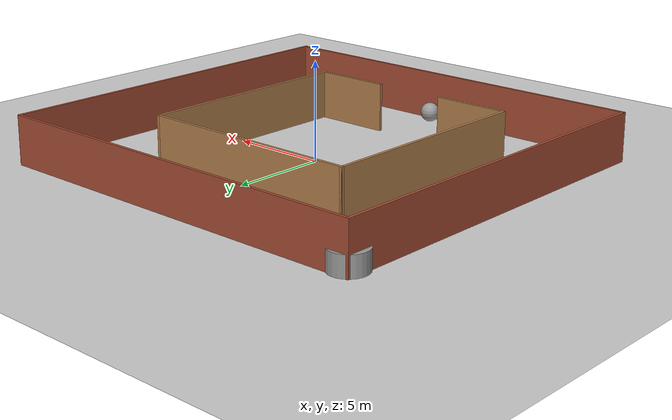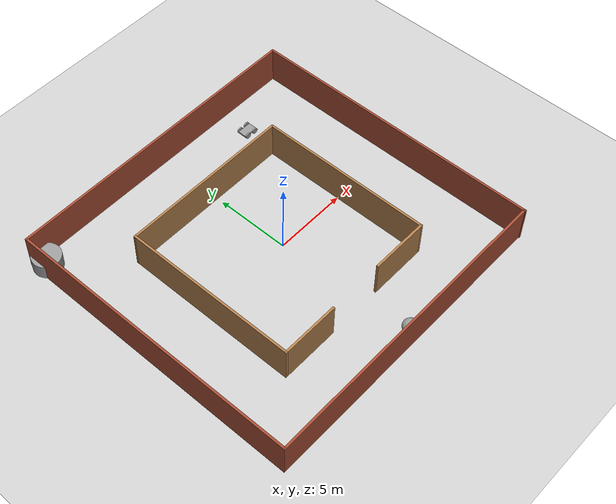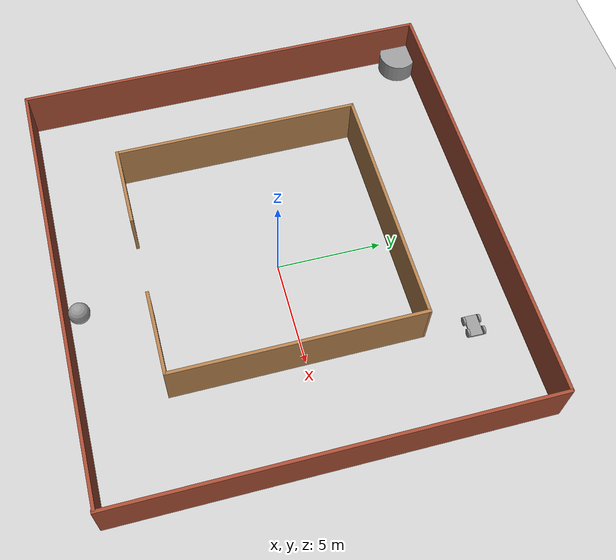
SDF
<sdf version="1.6">
 <world name="default">
  <plugin name="project_1_hello" filename="libproject_1_hello.so"/>
  <light name="sun" type="directional">
   <pose>0 0 10 0 -0 0</pose>
   <diffuse>0.8 0.8 0.8 1</diffuse>
   <specular>0.2 0.2 0.2 1</specular>
   <attenuation>
    <range>1000</range>
    <constant>0.9</constant>
    <linear>0.01</linear>
    <quadratic>0.001</quadratic>
   </attenuation>
   <direction>-0.5 0.1 -0.9</direction>
  </light>
  <model name="ground_plane">
   <static>1</static>
   <link name="link">
    <collision name="collision">
     <geometry><plane><normal>0 0 1</normal><size>100 100</size></plane></geometry>
     <surface>
      <contact><collide_bitmask>65535</collide_bitmask></contact>
      <friction><ode><mu>100</mu><mu2>50</mu2></ode></friction>
     </surface>
    </collision>
    <visual name="visual">
     <cast_shadows>0</cast_shadows>
     <geometry><plane><normal>0 0 1</normal><size>100 100</size></plane></geometry>
     <material>
      <script><uri>file://media/materials/scripts/gazebo.material</uri><name>Gazebo/Grey</name></script>
     </material>
    </visual>
   </link>
  </model>
  <gravity>0 0 -9.8</gravity>
  <magnetic_field>6e-06 2.3e-05 -4.2e-05</magnetic_field>
  <atmosphere type="adiabatic"/>
  <physics name="default_physics" default="0" type="ode">
   <max_step_size>0.001</max_step_size>
   <real_time_factor>1</real_time_factor>
   <real_time_update_rate>1000</real_time_update_rate>
  </physics>
  <scene><ambient>0.4 0.4 0.4 1</ambient><background>0.7 0.7 0.7 1</background><shadows>1</shadows></scene>
  <audio><device>default</device></audio>
  <spherical_coordinates>
   <surface_model>EARTH_WGS84</surface_model>
   <latitude_deg>0</latitude_deg>
   <longitude_deg>0</longitude_deg>
   <elevation>0</elevation>
   <heading_deg>0</heading_deg>
  </spherical_coordinates>
  <model name="mybuilding">
   <pose>-0.4574 -0.028782 0 0 -0 0</pose>
   <link name="Wall_0">
    <collision name="Wall_0_Collision">
     <geometry><box><size>20 0.15 2.5</size></box></geometry>
     <pose>0 0 1.25 0 -0 0</pose>
    </collision>
    <visual name="Wall_0_Visual">
     <pose>0 0 1.25 0 -0 0</pose>
     <geometry><box><size>20 0.15 2.5</size></box></geometry>
     <material>
      <script><uri>file://media/materials/scripts/gazebo.material</uri><name>Gazebo/Bricks</name></script>
      <ambient>0.996078 0.47451 0.0196078 1</ambient>
     </material>
     <meta><layer>0</layer></meta>
    </visual>
    <pose>-10.4506 0.018168 0 0 -0 1.5708</pose>
   </link>
   <link name="Wall_1">
    <collision name="Wall_1_Collision">
     <geometry><box><size>21.0159 0.15 2.5</size></box></geometry>
     <pose>0 0 1.25 0 -0 0</pose>
    </collision>
    <visual name="Wall_1_Visual">
     <pose>0 0 1.25 0 -0 0</pose>
     <geometry><box><size>21.0159 0.15 2.5</size></box></geometry>
     <material>
      <script><uri>file://media/materials/scripts/gazebo.material</uri><name>Gazebo/Bricks</name></script>
      <ambient>0.996078 0.47451 0.0196078 1</ambient>
     </material>
     <meta><layer>0</layer></meta>
    </visual>
    <pose>-0.017588 9.94259 0 0 -0 -5.6e-05</pose>
   </link>
   <link name="Wall_10">
    <collision name="Wall_10_Collision">
     <geometry><box><size>4 0.15 2.5</size></box></geometry>
     <pose>0 0 1.25 0 -0 0</pose>
    </collision>
    <visual name="Wall_10_Visual">
     <pose>0 0 1.25 0 -0 0</pose>
     <geometry><box><size>4 0.15 2.5</size></box></geometry>
     <material>
      <script><uri>file://media/materials/scripts/gazebo.material</uri><name>Gazebo/Wood</name></script>
      <ambient>0.447059 0.623529 0.811765 1</ambient>
     </material>
     <meta><layer>0</layer></meta>
    </visual>
    <pose>3.54044 -6.13683 0 0 -0 3.14159</pose>
   </link>
   <link name="Wall_2">
    <collision name="Wall_2_Collision">
     <geometry><box><size>20 0.15 2.5</size></box></geometry>
     <pose>0 0 1.25 0 -0 0</pose>
    </collision>
    <visual name="Wall_2_Visual">
     <pose>0 0 1.25 0 -0 0</pose>
     <geometry><box><size>20 0.15 2.5</size></box></geometry>
     <material>
      <script><uri>file://media/materials/scripts/gazebo.material</uri><name>Gazebo/Bricks</name></script>
      <ambient>0.996078 0.47451 0.0196078 1</ambient>
     </material>
     <meta><layer>0</layer></meta>
    </visual>
    <pose>10.4506 -0.018171 0 0 -0 -1.5708</pose>
   </link>
   <link name="Wall_3">
    <collision name="Wall_3_Collision">
     <geometry><box><size>21.0159 0.15 2.5</size></box></geometry>
     <pose>0 0 1.25 0 -0 0</pose>
    </collision>
    <visual name="Wall_3_Visual">
     <pose>0 0 1.25 0 -0 0</pose>
     <geometry><box><size>21.0159 0.15 2.5</size></box></geometry>
     <material>
      <script><uri>file://media/materials/scripts/gazebo.material</uri><name>Gazebo/Bricks</name></script>
      <ambient>0.996078 0.47451 0.0196078 1</ambient>
     </material>
     <meta><layer>0</layer></meta>
    </visual>
    <pose>-0.017588 -9.90741 0 0 -0 3.14154</pose>
   </link>
   <link name="Wall_5">
    <collision name="Wall_5_Collision">
     <geometry><box><size>11.7703 0.15 2.5</size></box></geometry>
     <pose>0 0 1.25 0 -0 0</pose>
    </collision>
    <visual name="Wall_5_Visual">
     <pose>0 0 1.25 0 -0 0</pose>
     <geometry><box><size>11.7703 0.15 2.5</size></box></geometry>
     <material>
      <script><uri>file://media/materials/scripts/gazebo.material</uri><name>Gazebo/Wood</name></script>
      <ambient>0.447059 0.623529 0.811765 1</ambient>
     </material>
     <meta><layer>0</layer></meta>
    </visual>
    <pose>5.51244 -0.326832 0 0 -0 1.5708</pose>
   </link>
   <link name="Wall_6">
    <collision name="Wall_6_Collision">
     <geometry><box><size>11.793 0.15 2.5</size></box></geometry>
     <pose>0 0 1.25 0 -0 0</pose>
    </collision>
    <visual name="Wall_6_Visual">
     <pose>0 0 1.25 0 -0 0</pose>
     <geometry><box><size>11.793 0.15 2.5</size></box></geometry>
     <material>
      <script><uri>file://media/materials/scripts/gazebo.material</uri><name>Gazebo/Wood</name></script>
      <ambient>0.447059 0.623529 0.811765 1</ambient>
     </material>
     <meta><layer>0</layer></meta>
    </visual>
    <pose>-0.309062 5.48617 0 0 -0 3.14108</pose>
   </link>
   <link name="Wall_7">
    <collision name="Wall_7_Collision">
     <geometry><box><size>11.776 0.15 2.5</size></box></geometry>
     <pose>0 0 1.25 0 -0 0</pose>
    </collision>
    <visual name="Wall_7_Visual">
     <pose>0 0 1.25 0 -0 0</pose>
     <geometry><box><size>11.776 0.15 2.5</size></box></geometry>
     <material>
      <script><uri>file://media/materials/scripts/gazebo.material</uri><name>Gazebo/Wood</name></script>
      <ambient>0.447059 0.623529 0.811765 1</ambient>
     </material>
     <meta><layer>0</layer></meta>
    </visual>
    <pose>-6.13056 -0.323832 0 0 -0 -1.5708</pose>
   </link>
   <link name="Wall_8">
    <collision name="Wall_8_Collision">
     <geometry><box><size>4 0.15 2.5</size></box></geometry>
     <pose>0 0 1.25 0 -0 0</pose>
    </collision>
    <visual name="Wall_8_Visual">
     <pose>0 0 1.25 0 -0 0</pose>
     <geometry><box><size>4 0.15 2.5</size></box></geometry>
     <material>
      <script><uri>file://media/materials/scripts/gazebo.material</uri><name>Gazebo/Wood</name></script>
      <ambient>0.447059 0.623529 0.811765 1</ambient>
     </material>
     <meta><layer>0</layer></meta>
    </visual>
    <pose>-4.20556 -6.13683 0 0 -0 0</pose>
   </link>
   <static>1</static>
  </model>
  <model name="robot_4x4_0">
   <link name="link_0">
    <inertial>
     <mass>1</mass>
     <inertia>
      <ixx>0.166667</ixx>
      <ixy>0</ixy>
      <ixz>0</ixz>
      <iyy>0.166667</iyy>
      <iyz>0</iyz>
      <izz>0.166667</izz>
     </inertia>
    </inertial>
    <visual name="visual">
     <geometry><box><size>1 0.6 0.1</size></box></geometry>
     <material>
      <lighting>1</lighting>
      <script><uri>file://media/materials/scripts/gazebo.material</uri><name>Gazebo/Grey</name></script>
      <shader type="vertex"><normal_map>__default__</normal_map></shader>
      <ambient>0.3 0.3 0.3 1</ambient>
      <diffuse>0.7 0.7 0.7 1</diffuse>
      <specular>0.01 0.01 0.01 1</specular>
      <emissive>0 0 0 1</emissive>
     </material>
    </visual>
    <collision name="collision">
     <geometry><box><size>1 0.6 0.1</size></box></geometry>
     <surface>
      <friction>
       <ode><mu>1</mu><mu2>1</mu2><fdir1>0 0 0</fdir1><slip1>0</slip1><slip2>0</slip2></ode>
       <torsional>
        <coefficient>1</coefficient>
        <patch_radius>0</patch_radius>
        <surface_radius>0</surface_radius>
        <use_patch_radius>1</use_patch_radius>
        <ode><slip>0</slip></ode>
       </torsional>
      </friction>
      <bounce><restitution_coefficient>0</restitution_coefficient><threshold>1e+06</threshold></bounce>
      <contact>
       <collide_without_contact>0</collide_without_contact>
       <collide_without_contact_bitmask>1</collide_without_contact_bitmask>
       <collide_bitmask>1</collide_bitmask>
       <ode>
        <soft_cfm>0</soft_cfm>
        <soft_erp>0.2</soft_erp>
        <kp>1e+13</kp>
        <kd>1</kd>
        <max_vel>0.01</max_vel>
        <min_depth>0</min_depth>
       </ode>
       <bullet>
        <split_impulse>1</split_impulse>
        <split_impulse_penetration_threshold>-0.01</split_impulse_penetration_threshold>
        <soft_cfm>0</soft_cfm>
        <soft_erp>0.2</soft_erp>
        <kp>1e+13</kp>
        <kd>1</kd>
       </bullet>
      </contact>
     </surface>
    </collision>
   </link>
   <link name="link_1">
    <inertial>
     <mass>1</mass>
     <inertia><ixx>0.145833</ixx><ixy>0</ixy><ixz>0</ixz><iyy>0.145833</iyy><iyz>0</iyz><izz>0.125</izz></inertia>
    </inertial>
    <pose>0.299987 -0.35006 -1.5e-05 1.5707 -0 0</pose>
    <visual name="visual">
     <geometry><cylinder><radius>0.2</radius><length>0.1</length></cylinder></geometry>
     <material>
      <lighting>1</lighting>
      <script><uri>file://media/materials/scripts/gazebo.material</uri><name>Gazebo/Grey</name></script>
      <shader type="vertex"><normal_map>__default__</normal_map></shader>
      <ambient>0.3 0.3 0.3 1</ambient>
      <diffuse>0.7 0.7 0.7 1</diffuse>
      <specular>0.01 0.01 0.01 1</specular>
      <emissive>0 0 0 1</emissive>
     </material>
    </visual>
    <collision name="collision">
     <geometry><cylinder><radius>0.2</radius><length>0.1</length></cylinder></geometry>
     <surface>
      <friction>
       <ode><mu>1</mu><mu2>1</mu2><fdir1>0 0 0</fdir1><slip1>0</slip1><slip2>0</slip2></ode>
       <torsional>
        <coefficient>1</coefficient>
        <patch_radius>0</patch_radius>
        <surface_radius>0</surface_radius>
        <use_patch_radius>1</use_patch_radius>
        <ode><slip>0</slip></ode>
       </torsional>
      </friction>
      <bounce><restitution_coefficient>0</restitution_coefficient><threshold>1e+06</threshold></bounce>
      <contact>
       <collide_without_contact>0</collide_without_contact>
       <collide_without_contact_bitmask>1</collide_without_contact_bitmask>
       <collide_bitmask>1</collide_bitmask>
       <ode>
        <soft_cfm>0</soft_cfm>
        <soft_erp>0.2</soft_erp>
        <kp>1e+13</kp>
        <kd>1</kd>
        <max_vel>0.01</max_vel>
        <min_depth>0</min_depth>
       </ode>
       <bullet>
        <split_impulse>1</split_impulse>
        <split_impulse_penetration_threshold>-0.01</split_impulse_penetration_threshold>
        <soft_cfm>0</soft_cfm>
        <soft_erp>0.2</soft_erp>
        <kp>1e+13</kp>
        <kd>1</kd>
       </bullet>
      </contact>
     </surface>
    </collision>
   </link>
   <link name="link_1_clone">
    <inertial>
     <mass>1</mass>
     <inertia><ixx>0.145833</ixx><ixy>0</ixy><ixz>0</ixz><iyy>0.145833</iyy><iyz>0</iyz><izz>0.125</izz></inertia>
    </inertial>
    <pose>0.300017 0.38046 -1.5e-05 1.5707 -0 0</pose>
    <visual name="visual">
     <geometry><cylinder><radius>0.2</radius><length>0.1</length></cylinder></geometry>
     <material>
      <lighting>1</lighting>
      <script><uri>file://media/materials/scripts/gazebo.material</uri><name>Gazebo/Grey</name></script>
      <shader type="vertex"><normal_map>__default__</normal_map></shader>
      <ambient>0.3 0.3 0.3 1</ambient>
      <diffuse>0.7 0.7 0.7 1</diffuse>
      <specular>0.01 0.01 0.01 1</specular>
      <emissive>0 0 0 1</emissive>
     </material>
    </visual>
    <collision name="collision">
     <geometry><cylinder><radius>0.2</radius><length>0.1</length></cylinder></geometry>
     <surface>
      <friction>
       <ode><mu>1</mu><mu2>1</mu2><fdir1>0 0 0</fdir1><slip1>0</slip1><slip2>0</slip2></ode>
       <torsional>
        <coefficient>1</coefficient>
        <patch_radius>0</patch_radius>
        <surface_radius>0</surface_radius>
        <use_patch_radius>1</use_patch_radius>
        <ode><slip>0</slip></ode>
       </torsional>
      </friction>
      <bounce><restitution_coefficient>0</restitution_coefficient><threshold>1e+06</threshold></bounce>
      <contact>
       <collide_without_contact>0</collide_without_contact>
       <collide_without_contact_bitmask>1</collide_without_contact_bitmask>
       <collide_bitmask>1</collide_bitmask>
       <ode>
        <soft_cfm>0</soft_cfm>
        <soft_erp>0.2</soft_erp>
        <kp>1e+13</kp>
        <kd>1</kd>
        <max_vel>0.01</max_vel>
        <min_depth>0</min_depth>
       </ode>
       <bullet>
        <split_impulse>1</split_impulse>
        <split_impulse_penetration_threshold>-0.01</split_impulse_penetration_threshold>
        <soft_cfm>0</soft_cfm>
        <soft_erp>0.2</soft_erp>
        <kp>1e+13</kp>
        <kd>1</kd>
       </bullet>
      </contact>
     </surface>
    </collision>
   </link>
   <link name="link_1_clone_0">
    <inertial>
     <mass>1</mass>
     <inertia><ixx>0.145833</ixx><ixy>0</ixy><ixz>0</ixz><iyy>0.145833</iyy><iyz>0</iyz><izz>0.125</izz></inertia>
    </inertial>
    <pose>-0.300033 -0.350027 1.5e-05 1.5707 5e-05 -4e-05</pose>
    <visual name="visual">
     <geometry><cylinder><radius>0.2</radius><length>0.1</length></cylinder></geometry>
     <material>
      <lighting>1</lighting>
      <script><uri>file://media/materials/scripts/gazebo.material</uri><name>Gazebo/Grey</name></script>
      <shader type="vertex"><normal_map>__default__</normal_map></shader>
      <ambient>0.3 0.3 0.3 1</ambient>
      <diffuse>0.7 0.7 0.7 1</diffuse>
      <specular>0.01 0.01 0.01 1</specular>
      <emissive>0 0 0 1</emissive>
     </material>
    </visual>
    <collision name="collision">
     <geometry><cylinder><radius>0.2</radius><length>0.1</length></cylinder></geometry>
     <surface>
      <friction>
       <ode><mu>1</mu><mu2>1</mu2><fdir1>0 0 0</fdir1><slip1>0</slip1><slip2>0</slip2></ode>
       <torsional>
        <coefficient>1</coefficient>
        <patch_radius>0</patch_radius>
        <surface_radius>0</surface_radius>
        <use_patch_radius>1</use_patch_radius>
        <ode><slip>0</slip></ode>
       </torsional>
      </friction>
      <bounce><restitution_coefficient>0</restitution_coefficient><threshold>1e+06</threshold></bounce>
      <contact>
       <collide_without_contact>0</collide_without_contact>
       <collide_without_contact_bitmask>1</collide_without_contact_bitmask>
       <collide_bitmask>1</collide_bitmask>
       <ode>
        <soft_cfm>0</soft_cfm>
        <soft_erp>0.2</soft_erp>
        <kp>1e+13</kp>
        <kd>1</kd>
        <max_vel>0.01</max_vel>
        <min_depth>0</min_depth>
       </ode>
       <bullet>
        <split_impulse>1</split_impulse>
        <split_impulse_penetration_threshold>-0.01</split_impulse_penetration_threshold>
        <soft_cfm>0</soft_cfm>
        <soft_erp>0.2</soft_erp>
        <kp>1e+13</kp>
        <kd>1</kd>
       </bullet>
      </contact>
     </surface>
    </collision>
   </link>
   <link name="link_1_clone_1">
    <inertial>
     <mass>1</mass>
     <inertia><ixx>0.145833</ixx><ixy>0</ixy><ixz>0</ixz><iyy>0.145833</iyy><iyz>0</iyz><izz>0.125</izz></inertia>
    </inertial>
    <pose>-0.300005 0.350052 1.5e-05 1.5707 5e-05 -4e-05</pose>
    <visual name="visual">
     <geometry><cylinder><radius>0.2</radius><length>0.1</length></cylinder></geometry>
     <material>
      <lighting>1</lighting>
      <script><uri>file://media/materials/scripts/gazebo.material</uri><name>Gazebo/Grey</name></script>
      <shader type="vertex"><normal_map>__default__</normal_map></shader>
      <ambient>0.3 0.3 0.3 1</ambient>
      <diffuse>0.7 0.7 0.7 1</diffuse>
      <specular>0.01 0.01 0.01 1</specular>
      <emissive>0 0 0 1</emissive>
     </material>
    </visual>
    <collision name="collision">
     <geometry><cylinder><radius>0.2</radius><length>0.1</length></cylinder></geometry>
     <surface>
      <friction>
       <ode><mu>1</mu><mu2>1</mu2><fdir1>0 0 0</fdir1><slip1>0</slip1><slip2>0</slip2></ode>
       <torsional>
        <coefficient>1</coefficient>
        <patch_radius>0</patch_radius>
        <surface_radius>0</surface_radius>
        <use_patch_radius>1</use_patch_radius>
        <ode><slip>0</slip></ode>
       </torsional>
      </friction>
      <bounce><restitution_coefficient>0</restitution_coefficient><threshold>1e+06</threshold></bounce>
      <contact>
       <collide_without_contact>0</collide_without_contact>
       <collide_without_contact_bitmask>1</collide_without_contact_bitmask>
       <collide_bitmask>1</collide_bitmask>
       <ode>
        <soft_cfm>0</soft_cfm>
        <soft_erp>0.2</soft_erp>
        <kp>1e+13</kp>
        <kd>1</kd>
        <max_vel>0.01</max_vel>
        <min_depth>0</min_depth>
       </ode>
       <bullet>
        <split_impulse>1</split_impulse>
        <split_impulse_penetration_threshold>-0.01</split_impulse_penetration_threshold>
        <soft_cfm>0</soft_cfm>
        <soft_erp>0.2</soft_erp>
        <kp>1e+13</kp>
        <kd>1</kd>
       </bullet>
      </contact>
     </surface>
    </collision>
   </link>
   <joint name="link_0_JOINT_0" type="revolute">
    <parent>link_0</parent>
    <child>link_1_clone_0</child>
    <axis>
     <xyz>0 0 1</xyz>
     <use_parent_model_frame>0</use_parent_model_frame>
     <limit>
      <lower>-1.79769e+308</lower>
      <upper>1.79769e+308</upper>
      <effort>-1</effort>
      <velocity>-1</velocity>
     </limit>
     <dynamics>
      <spring_reference>0</spring_reference>
      <spring_stiffness>0</spring_stiffness>
      <damping>0</damping>
     </dynamics>
    </axis>
    <physics>
     <ode><limit><cfm>0</cfm><erp>0.2</erp></limit><suspension><cfm>0</cfm><erp>0.2</erp></suspension></ode>
    </physics>
   </joint>
   <joint name="link_0_JOINT_1" type="revolute">
    <parent>link_0</parent>
    <child>link_1_clone_1</child>
    <axis>
     <xyz>0 0 1</xyz>
     <use_parent_model_frame>0</use_parent_model_frame>
     <limit>
      <lower>-1.79769e+308</lower>
      <upper>1.79769e+308</upper>
      <effort>-1</effort>
      <velocity>-1</velocity>
     </limit>
     <dynamics>
      <spring_reference>0</spring_reference>
      <spring_stiffness>0</spring_stiffness>
      <damping>0</damping>
     </dynamics>
    </axis>
    <physics>
     <ode><limit><cfm>0</cfm><erp>0.2</erp></limit><suspension><cfm>0</cfm><erp>0.2</erp></suspension></ode>
    </physics>
   </joint>
   <joint name="link_0_JOINT_2" type="revolute">
    <parent>link_0</parent>
    <child>link_1</child>
    <axis>
     <xyz>0 0 1</xyz>
     <use_parent_model_frame>0</use_parent_model_frame>
     <limit>
      <lower>-1.79769e+308</lower>
      <upper>1.79769e+308</upper>
      <effort>-1</effort>
      <velocity>-1</velocity>
     </limit>
     <dynamics>
      <spring_reference>0</spring_reference>
      <spring_stiffness>0</spring_stiffness>
      <damping>0</damping>
     </dynamics>
    </axis>
    <physics>
     <ode><limit><cfm>0</cfm><erp>0.2</erp></limit><suspension><cfm>0</cfm><erp>0.2</erp></suspension></ode>
    </physics>
   </joint>
   <joint name="link_0_JOINT_3" type="revolute">
    <parent>link_0</parent>
    <child>link_1_clone</child>
    <axis>
     <xyz>0 0 1</xyz>
     <use_parent_model_frame>0</use_parent_model_frame>
     <limit>
      <lower>-1.79769e+308</lower>
      <upper>1.79769e+308</upper>
      <effort>-1</effort>
      <velocity>-1</velocity>
     </limit>
     <dynamics>
      <spring_reference>0</spring_reference>
      <spring_stiffness>0</spring_stiffness>
      <damping>0</damping>
     </dynamics>
    </axis>
    <physics>
     <ode><limit><cfm>0</cfm><erp>0.2</erp></limit><suspension><cfm>0</cfm><erp>0.2</erp></suspension></ode>
    </physics>
   </joint>
   <static>0</static>
   <pose>5.25158 7.78258 0.200003 3e-06 -5e-05 -0.021456</pose>
  </model>
  <model name="unit_cylinder">
   <pose>-10.3203 9.22817 0.5 0 -0 0</pose>
   <link name="link">
    <inertial>
     <mass>1</mass>
     <inertia><ixx>0.145833</ixx><ixy>0</ixy><ixz>0</ixz><iyy>0.145833</iyy><iyz>0</iyz><izz>0.125</izz></inertia>
    </inertial>
    <collision name="collision">
     <geometry><cylinder><radius>0.930565</radius><length>1</length></cylinder></geometry>
    </collision>
    <visual name="visual">
     <geometry><cylinder><radius>0.930565</radius><length>1</length></cylinder></geometry>
     <material>
      <script><name>Gazebo/Grey</name><uri>file://media/materials/scripts/gazebo.material</uri></script>
     </material>
    </visual>
   </link>
  </model>
  <model name="unit_sphere">
   <pose>0.322919 -9.3553 0.5 -0.011892 1e-06 0</pose>
   <link name="link">
    <inertial>
     <mass>1</mass>
     <inertia><ixx>0.1</ixx><ixy>0</ixy><ixz>0</ixz><iyy>0.1</iyy><iyz>0</iyz><izz>0.1</izz></inertia>
    </inertial>
    <collision name="collision"><geometry><sphere><radius>0.5</radius></sphere></geometry></collision>
    <visual name="visual">
     <geometry><sphere><radius>0.5</radius></sphere></geometry>
     <material>
      <script><name>Gazebo/Grey</name><uri>file://media/materials/scripts/gazebo.material</uri></script>
     </material>
    </visual>
   </link>
  </model>
 </world>
</sdf>
